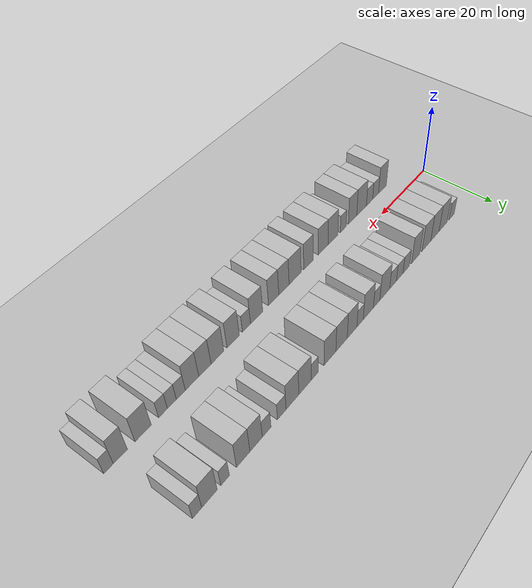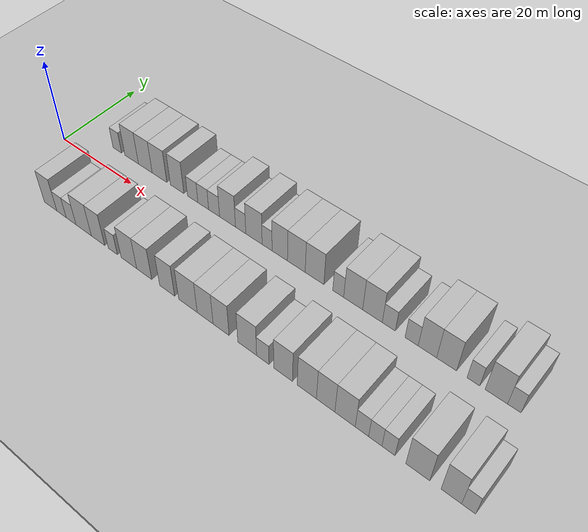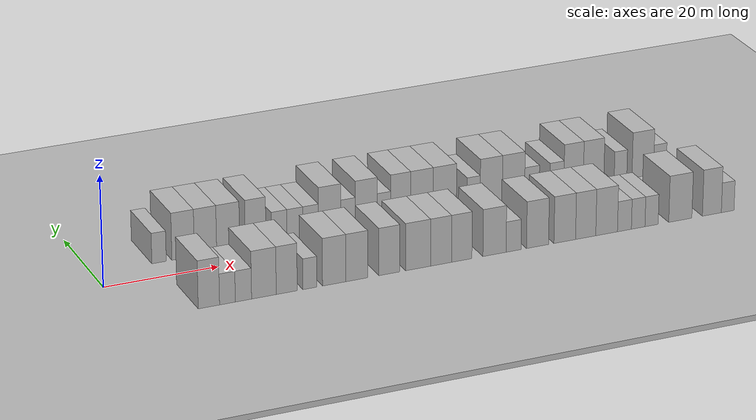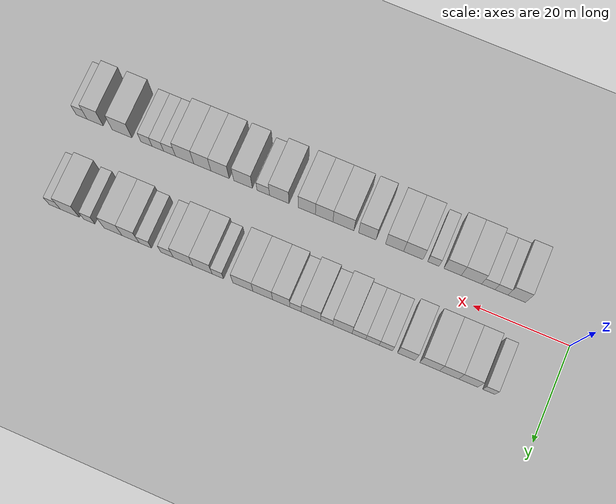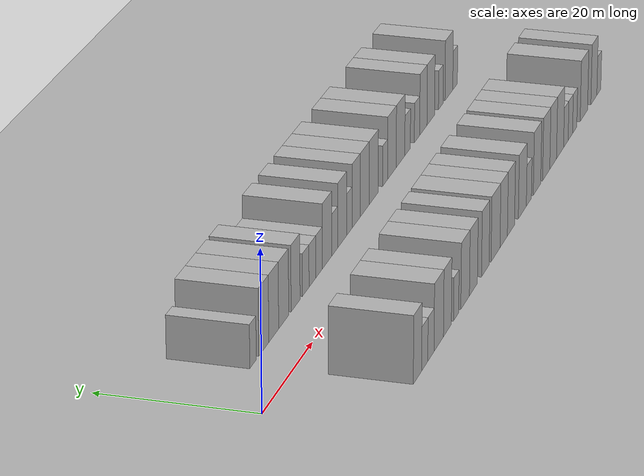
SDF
<sdf version="1.6">
 <world name="default">
  <include><name>ground_plane_1</name><uri>model://HANNAS_ground_plane</uri></include>
  <include>
   <name>ground_plane_2</name>
   <uri>model://HANNAS_ground_plane</uri>
   <pose>100 0 0  0 0 0</pose>
  </include>
  <model name="building_1">
   <static>1</static>
   <pose>11.2591 9.5000 0 0.000000 0.000000 1.570796</pose>
   <link name="link">
    <pose>0 0 3.00 0 0 0</pose>
    <collision name="collision"><geometry><box><size>10.0000 2.5181 6.0000</size></box></geometry></collision>
    <visual name="visual">
     <cast_shadows>0</cast_shadows>
     <geometry><box><size>10.0000 2.5181 6.0000</size></box></geometry>
     <material>
      <script>
       <uri>model://HANNAS_wall/materials/scripts</uri>
       <uri>model://HANNAS_wall/materials/textures</uri>
       <name>vrc/HANNAS_wall</name>
      </script>
     </material>
    </visual>
   </link>
  </model>
  <model name="building_2">
   <static>1</static>
   <pose>15.4952 9.5000 0 0.000000 0.000000 1.570796</pose>
   <link name="link">
    <pose>0 0 4.50 0 0 0</pose>
    <collision name="collision"><geometry><box><size>10.0000 3.9541 9.0000</size></box></geometry></collision>
    <visual name="visual">
     <cast_shadows>0</cast_shadows>
     <geometry><box><size>10.0000 3.9541 9.0000</size></box></geometry>
     <material>
      <script>
       <uri>model://HANNAS_wall/materials/scripts</uri>
       <uri>model://HANNAS_wall/materials/textures</uri>
       <name>vrc/HANNAS_wall</name>
      </script>
     </material>
    </visual>
   </link>
  </model>
  <model name="building_3">
   <static>1</static>
   <pose>19.4409 9.5000 0 0.000000 0.000000 1.570796</pose>
   <link name="link">
    <pose>0 0 4.50 0 0 0</pose>
    <collision name="collision"><geometry><box><size>10.0000 3.9372 9.0000</size></box></geometry></collision>
    <visual name="visual">
     <cast_shadows>0</cast_shadows>
     <geometry><box><size>10.0000 3.9372 9.0000</size></box></geometry>
     <material>
      <script>
       <uri>model://HANNAS_wall/materials/scripts</uri>
       <uri>model://HANNAS_wall/materials/textures</uri>
       <name>vrc/HANNAS_wall</name>
      </script>
     </material>
    </visual>
   </link>
  </model>
  <model name="building_4">
   <static>1</static>
   <pose>23.4566 9.5000 0 0.000000 0.000000 1.570796</pose>
   <link name="link">
    <pose>0 0 4.50 0 0 0</pose>
    <collision name="collision"><geometry><box><size>10.0000 4.0942 9.0000</size></box></geometry></collision>
    <visual name="visual">
     <cast_shadows>0</cast_shadows>
     <geometry><box><size>10.0000 4.0942 9.0000</size></box></geometry>
     <material>
      <script>
       <uri>model://HANNAS_wall/materials/scripts</uri>
       <uri>model://HANNAS_wall/materials/textures</uri>
       <name>vrc/HANNAS_wall</name>
      </script>
     </material>
    </visual>
   </link>
  </model>
  <model name="building_5">
   <static>1</static>
   <pose>28.3502 9.5000 0 0.000000 0.000000 1.570796</pose>
   <link name="link">
    <pose>0 0 4.50 0 0 0</pose>
    <collision name="collision"><geometry><box><size>10.0000 3.6929 9.0000</size></box></geometry></collision>
    <visual name="visual">
     <cast_shadows>0</cast_shadows>
     <geometry><box><size>10.0000 3.6929 9.0000</size></box></geometry>
     <material>
      <script>
       <uri>model://HANNAS_wall/materials/scripts</uri>
       <uri>model://HANNAS_wall/materials/textures</uri>
       <name>vrc/HANNAS_wall</name>
      </script>
     </material>
    </visual>
   </link>
  </model>
  <model name="building_6">
   <static>1</static>
   <pose>32.5860 9.5000 0 0.000000 0.000000 1.570796</pose>
   <link name="link">
    <pose>0 0 3.00 0 0 0</pose>
    <collision name="collision"><geometry><box><size>10.0000 2.7786 6.0000</size></box></geometry></collision>
    <visual name="visual">
     <cast_shadows>0</cast_shadows>
     <geometry><box><size>10.0000 2.7786 6.0000</size></box></geometry>
     <material>
      <script>
       <uri>model://HANNAS_wall/materials/scripts</uri>
       <uri>model://HANNAS_wall/materials/textures</uri>
       <name>vrc/HANNAS_wall</name>
      </script>
     </material>
    </visual>
   </link>
  </model>
  <model name="building_7">
   <static>1</static>
   <pose>35.3930 9.5000 0 0.000000 0.000000 1.570796</pose>
   <link name="link">
    <pose>0 0 3.00 0 0 0</pose>
    <collision name="collision"><geometry><box><size>10.0000 2.8354 6.0000</size></box></geometry></collision>
    <visual name="visual">
     <cast_shadows>0</cast_shadows>
     <geometry><box><size>10.0000 2.8354 6.0000</size></box></geometry>
     <material>
      <script>
       <uri>model://HANNAS_wall/materials/scripts</uri>
       <uri>model://HANNAS_wall/materials/textures</uri>
       <name>vrc/HANNAS_wall</name>
      </script>
     </material>
    </visual>
   </link>
  </model>
  <model name="building_8">
   <static>1</static>
   <pose>38.2418 9.5000 0 0.000000 0.000000 1.570796</pose>
   <link name="link">
    <pose>0 0 3.00 0 0 0</pose>
    <collision name="collision"><geometry><box><size>10.0000 2.8623 6.0000</size></box></geometry></collision>
    <visual name="visual">
     <cast_shadows>0</cast_shadows>
     <geometry><box><size>10.0000 2.8623 6.0000</size></box></geometry>
     <material>
      <script>
       <uri>model://HANNAS_wall/materials/scripts</uri>
       <uri>model://HANNAS_wall/materials/textures</uri>
       <name>vrc/HANNAS_wall</name>
      </script>
     </material>
    </visual>
   </link>
  </model>
  <model name="building_9">
   <static>1</static>
   <pose>41.7074 9.5000 0 0.000000 0.000000 1.570796</pose>
   <link name="link">
    <pose>0 0 4.50 0 0 0</pose>
    <collision name="collision"><geometry><box><size>10.0000 4.0688 9.0000</size></box></geometry></collision>
    <visual name="visual">
     <cast_shadows>0</cast_shadows>
     <geometry><box><size>10.0000 4.0688 9.0000</size></box></geometry>
     <material>
      <script>
       <uri>model://HANNAS_wall/materials/scripts</uri>
       <uri>model://HANNAS_wall/materials/textures</uri>
       <name>vrc/HANNAS_wall</name>
      </script>
     </material>
    </visual>
   </link>
  </model>
  <model name="building_10">
   <static>1</static>
   <pose>45.0403 9.5000 0 0.000000 0.000000 1.570796</pose>
   <link name="link">
    <pose>0 0 3.00 0 0 0</pose>
    <collision name="collision"><geometry><box><size>10.0000 2.5971 6.0000</size></box></geometry></collision>
    <visual name="visual">
     <cast_shadows>0</cast_shadows>
     <geometry><box><size>10.0000 2.5971 6.0000</size></box></geometry>
     <material>
      <script>
       <uri>model://HANNAS_wall/materials/scripts</uri>
       <uri>model://HANNAS_wall/materials/textures</uri>
       <name>vrc/HANNAS_wall</name>
      </script>
     </material>
    </visual>
   </link>
  </model>
  <model name="building_11">
   <static>1</static>
   <pose>48.3593 9.5000 0 0.000000 0.000000 1.570796</pose>
   <link name="link">
    <pose>0 0 4.50 0 0 0</pose>
    <collision name="collision"><geometry><box><size>10.0000 4.0409 9.0000</size></box></geometry></collision>
    <visual name="visual">
     <cast_shadows>0</cast_shadows>
     <geometry><box><size>10.0000 4.0409 9.0000</size></box></geometry>
     <material>
      <script>
       <uri>model://HANNAS_wall/materials/scripts</uri>
       <uri>model://HANNAS_wall/materials/textures</uri>
       <name>vrc/HANNAS_wall</name>
      </script>
     </material>
    </visual>
   </link>
  </model>
  <model name="building_12">
   <static>1</static>
   <pose>51.5894 9.5000 0 0.000000 0.000000 1.570796</pose>
   <link name="link">
    <pose>0 0 3.00 0 0 0</pose>
    <collision name="collision"><geometry><box><size>10.0000 2.4194 6.0000</size></box></geometry></collision>
    <visual name="visual">
     <cast_shadows>0</cast_shadows>
     <geometry><box><size>10.0000 2.4194 6.0000</size></box></geometry>
     <material>
      <script>
       <uri>model://HANNAS_wall/materials/scripts</uri>
       <uri>model://HANNAS_wall/materials/textures</uri>
       <name>vrc/HANNAS_wall</name>
      </script>
     </material>
    </visual>
   </link>
  </model>
  <model name="building_13">
   <static>1</static>
   <pose>54.6429 9.5000 0 0.000000 0.000000 1.570796</pose>
   <link name="link">
    <pose>0 0 4.50 0 0 0</pose>
    <collision name="collision"><geometry><box><size>10.0000 3.6875 9.0000</size></box></geometry></collision>
    <visual name="visual">
     <cast_shadows>0</cast_shadows>
     <geometry><box><size>10.0000 3.6875 9.0000</size></box></geometry>
     <material>
      <script>
       <uri>model://HANNAS_wall/materials/scripts</uri>
       <uri>model://HANNAS_wall/materials/textures</uri>
       <name>vrc/HANNAS_wall</name>
      </script>
     </material>
    </visual>
   </link>
  </model>
  <model name="building_14">
   <static>1</static>
   <pose>58.5699 9.5000 0 0.000000 0.000000 1.570796</pose>
   <link name="link">
    <pose>0 0 4.50 0 0 0</pose>
    <collision name="collision"><geometry><box><size>10.0000 4.1665 9.0000</size></box></geometry></collision>
    <visual name="visual">
     <cast_shadows>0</cast_shadows>
     <geometry><box><size>10.0000 4.1665 9.0000</size></box></geometry>
     <material>
      <script>
       <uri>model://HANNAS_wall/materials/scripts</uri>
       <uri>model://HANNAS_wall/materials/textures</uri>
       <name>vrc/HANNAS_wall</name>
      </script>
     </material>
    </visual>
   </link>
  </model>
  <model name="building_15">
   <static>1</static>
   <pose>62.7989 9.5000 0 0.000000 0.000000 1.570796</pose>
   <link name="link">
    <pose>0 0 4.50 0 0 0</pose>
    <collision name="collision"><geometry><box><size>10.0000 4.2914 9.0000</size></box></geometry></collision>
    <visual name="visual">
     <cast_shadows>0</cast_shadows>
     <geometry><box><size>10.0000 4.2914 9.0000</size></box></geometry>
     <material>
      <script>
       <uri>model://HANNAS_wall/materials/scripts</uri>
       <uri>model://HANNAS_wall/materials/textures</uri>
       <name>vrc/HANNAS_wall</name>
      </script>
     </material>
    </visual>
   </link>
  </model>
  <model name="building_16">
   <static>1</static>
   <pose>68.1604 9.5000 0 0.000000 0.000000 1.570796</pose>
   <link name="link">
    <pose>0 0 3.00 0 0 0</pose>
    <collision name="collision"><geometry><box><size>10.0000 2.4318 6.0000</size></box></geometry></collision>
    <visual name="visual">
     <cast_shadows>0</cast_shadows>
     <geometry><box><size>10.0000 2.4318 6.0000</size></box></geometry>
     <material>
      <script>
       <uri>model://HANNAS_wall/materials/scripts</uri>
       <uri>model://HANNAS_wall/materials/textures</uri>
       <name>vrc/HANNAS_wall</name>
      </script>
     </material>
    </visual>
   </link>
  </model>
  <model name="building_17">
   <static>1</static>
   <pose>71.4550 9.5000 0 0.000000 0.000000 1.570796</pose>
   <link name="link">
    <pose>0 0 4.50 0 0 0</pose>
    <collision name="collision"><geometry><box><size>10.0000 4.1574 9.0000</size></box></geometry></collision>
    <visual name="visual">
     <cast_shadows>0</cast_shadows>
     <geometry><box><size>10.0000 4.1574 9.0000</size></box></geometry>
     <material>
      <script>
       <uri>model://HANNAS_wall/materials/scripts</uri>
       <uri>model://HANNAS_wall/materials/textures</uri>
       <name>vrc/HANNAS_wall</name>
      </script>
     </material>
    </visual>
   </link>
  </model>
  <model name="building_18">
   <static>1</static>
   <pose>75.6295 9.5000 0 0.000000 0.000000 1.570796</pose>
   <link name="link">
    <pose>0 0 4.50 0 0 0</pose>
    <collision name="collision"><geometry><box><size>10.0000 4.1917 9.0000</size></box></geometry></collision>
    <visual name="visual">
     <cast_shadows>0</cast_shadows>
     <geometry><box><size>10.0000 4.1917 9.0000</size></box></geometry>
     <material>
      <script>
       <uri>model://HANNAS_wall/materials/scripts</uri>
       <uri>model://HANNAS_wall/materials/textures</uri>
       <name>vrc/HANNAS_wall</name>
      </script>
     </material>
    </visual>
   </link>
  </model>
  <model name="building_19">
   <static>1</static>
   <pose>79.0983 9.5000 0 0.000000 0.000000 1.570796</pose>
   <link name="link">
    <pose>0 0 3.00 0 0 0</pose>
    <collision name="collision"><geometry><box><size>10.0000 2.7459 6.0000</size></box></geometry></collision>
    <visual name="visual">
     <cast_shadows>0</cast_shadows>
     <geometry><box><size>10.0000 2.7459 6.0000</size></box></geometry>
     <material>
      <script>
       <uri>model://HANNAS_wall/materials/scripts</uri>
       <uri>model://HANNAS_wall/materials/textures</uri>
       <name>vrc/HANNAS_wall</name>
      </script>
     </material>
    </visual>
   </link>
  </model>
  <model name="building_20">
   <static>1</static>
   <pose>83.8172 9.5000 0 0.000000 0.000000 1.570796</pose>
   <link name="link">
    <pose>0 0 3.00 0 0 0</pose>
    <collision name="collision"><geometry><box><size>10.0000 2.6920 6.0000</size></box></geometry></collision>
    <visual name="visual">
     <cast_shadows>0</cast_shadows>
     <geometry><box><size>10.0000 2.6920 6.0000</size></box></geometry>
     <material>
      <script>
       <uri>model://HANNAS_wall/materials/scripts</uri>
       <uri>model://HANNAS_wall/materials/textures</uri>
       <name>vrc/HANNAS_wall</name>
      </script>
     </material>
    </visual>
   </link>
  </model>
  <model name="building_21">
   <static>1</static>
   <pose>87.0149 9.5000 0 0.000000 0.000000 1.570796</pose>
   <link name="link">
    <pose>0 0 4.50 0 0 0</pose>
    <collision name="collision"><geometry><box><size>10.0000 3.7034 9.0000</size></box></geometry></collision>
    <visual name="visual">
     <cast_shadows>0</cast_shadows>
     <geometry><box><size>10.0000 3.7034 9.0000</size></box></geometry>
     <material>
      <script>
       <uri>model://HANNAS_wall/materials/scripts</uri>
       <uri>model://HANNAS_wall/materials/textures</uri>
       <name>vrc/HANNAS_wall</name>
      </script>
     </material>
    </visual>
   </link>
  </model>
  <model name="building_22">
   <static>1</static>
   <pose>90.8317 9.5000 0 0.000000 0.000000 1.570796</pose>
   <link name="link">
    <pose>0 0 4.50 0 0 0</pose>
    <collision name="collision"><geometry><box><size>10.0000 3.9303 9.0000</size></box></geometry></collision>
    <visual name="visual">
     <cast_shadows>0</cast_shadows>
     <geometry><box><size>10.0000 3.9303 9.0000</size></box></geometry>
     <material>
      <script>
       <uri>model://HANNAS_wall/materials/scripts</uri>
       <uri>model://HANNAS_wall/materials/textures</uri>
       <name>vrc/HANNAS_wall</name>
      </script>
     </material>
    </visual>
   </link>
  </model>
  <model name="building_23">
   <static>1</static>
   <pose>96.0097 9.5000 0 0.000000 0.000000 1.570796</pose>
   <link name="link">
    <pose>0 0 3.00 0 0 0</pose>
    <collision name="collision"><geometry><box><size>10.0000 2.4257 6.0000</size></box></geometry></collision>
    <visual name="visual">
     <cast_shadows>0</cast_shadows>
     <geometry><box><size>10.0000 2.4257 6.0000</size></box></geometry>
     <material>
      <script>
       <uri>model://HANNAS_wall/materials/scripts</uri>
       <uri>model://HANNAS_wall/materials/textures</uri>
       <name>vrc/HANNAS_wall</name>
      </script>
     </material>
    </visual>
   </link>
  </model>
  <model name="building_24">
   <static>1</static>
   <pose>100.3066 9.5000 0 0.000000 0.000000 1.570796</pose>
   <link name="link">
    <pose>0 0 4.50 0 0 0</pose>
    <collision name="collision"><geometry><box><size>10.0000 4.1679 9.0000</size></box></geometry></collision>
    <visual name="visual">
     <cast_shadows>0</cast_shadows>
     <geometry><box><size>10.0000 4.1679 9.0000</size></box></geometry>
     <material>
      <script>
       <uri>model://HANNAS_wall/materials/scripts</uri>
       <uri>model://HANNAS_wall/materials/textures</uri>
       <name>vrc/HANNAS_wall</name>
      </script>
     </material>
    </visual>
   </link>
  </model>
  <model name="building_25">
   <static>1</static>
   <pose>103.6202 9.5000 0 0.000000 0.000000 1.570796</pose>
   <link name="link">
    <pose>0 0 3.00 0 0 0</pose>
    <collision name="collision"><geometry><box><size>10.0000 2.4592 6.0000</size></box></geometry></collision>
    <visual name="visual">
     <cast_shadows>0</cast_shadows>
     <geometry><box><size>10.0000 2.4592 6.0000</size></box></geometry>
     <material>
      <script>
       <uri>model://HANNAS_wall/materials/scripts</uri>
       <uri>model://HANNAS_wall/materials/textures</uri>
       <name>vrc/HANNAS_wall</name>
      </script>
     </material>
    </visual>
   </link>
  </model>
  <model name="building_51">
   <static>1</static>
   <pose>12.8317 -9.5000 0 0.000000 0.000000 1.570796</pose>
   <link name="link">
    <pose>0 0 4.50 0 0 0</pose>
    <collision name="collision"><geometry><box><size>10.0000 3.6635 9.0000</size></box></geometry></collision>
    <visual name="visual">
     <cast_shadows>0</cast_shadows>
     <geometry><box><size>10.0000 3.6635 9.0000</size></box></geometry>
     <material>
      <script>
       <uri>model://HANNAS_wall/materials/scripts</uri>
       <uri>model://HANNAS_wall/materials/textures</uri>
       <name>vrc/HANNAS_wall</name>
      </script>
     </material>
    </visual>
   </link>
  </model>
  <model name="building_52">
   <static>1</static>
   <pose>16.0244 -9.5000 0 0.000000 0.000000 1.570796</pose>
   <link name="link">
    <pose>0 0 3.00 0 0 0</pose>
    <collision name="collision"><geometry><box><size>10.0000 2.7217 6.0000</size></box></geometry></collision>
    <visual name="visual">
     <cast_shadows>0</cast_shadows>
     <geometry><box><size>10.0000 2.7217 6.0000</size></box></geometry>
     <material>
      <script>
       <uri>model://HANNAS_wall/materials/scripts</uri>
       <uri>model://HANNAS_wall/materials/textures</uri>
       <name>vrc/HANNAS_wall</name>
      </script>
     </material>
    </visual>
   </link>
  </model>
  <model name="building_53">
   <static>1</static>
   <pose>18.7912 -9.5000 0 0.000000 0.000000 1.570796</pose>
   <link name="link">
    <pose>0 0 3.00 0 0 0</pose>
    <collision name="collision"><geometry><box><size>10.0000 2.8119 6.0000</size></box></geometry></collision>
    <visual name="visual">
     <cast_shadows>0</cast_shadows>
     <geometry><box><size>10.0000 2.8119 6.0000</size></box></geometry>
     <material>
      <script>
       <uri>model://HANNAS_wall/materials/scripts</uri>
       <uri>model://HANNAS_wall/materials/textures</uri>
       <name>vrc/HANNAS_wall</name>
      </script>
     </material>
    </visual>
   </link>
  </model>
  <model name="building_54">
   <static>1</static>
   <pose>22.3428 -9.5000 0 0.000000 0.000000 1.570796</pose>
   <link name="link">
    <pose>0 0 4.50 0 0 0</pose>
    <collision name="collision"><geometry><box><size>10.0000 4.2914 9.0000</size></box></geometry></collision>
    <visual name="visual">
     <cast_shadows>0</cast_shadows>
     <geometry><box><size>10.0000 4.2914 9.0000</size></box></geometry>
     <material>
      <script>
       <uri>model://HANNAS_wall/materials/scripts</uri>
       <uri>model://HANNAS_wall/materials/textures</uri>
       <name>vrc/HANNAS_wall</name>
      </script>
     </material>
    </visual>
   </link>
  </model>
  <model name="building_55">
   <static>1</static>
   <pose>26.3181 -9.5000 0 0.000000 0.000000 1.570796</pose>
   <link name="link">
    <pose>0 0 4.50 0 0 0</pose>
    <collision name="collision"><geometry><box><size>10.0000 3.6592 9.0000</size></box></geometry></collision>
    <visual name="visual">
     <cast_shadows>0</cast_shadows>
     <geometry><box><size>10.0000 3.6592 9.0000</size></box></geometry>
     <material>
      <script>
       <uri>model://HANNAS_wall/materials/scripts</uri>
       <uri>model://HANNAS_wall/materials/textures</uri>
       <name>vrc/HANNAS_wall</name>
      </script>
     </material>
    </visual>
   </link>
  </model>
  <model name="building_56">
   <static>1</static>
   <pose>30.3644 -9.5000 0 0.000000 0.000000 1.570796</pose>
   <link name="link">
    <pose>0 0 3.00 0 0 0</pose>
    <collision name="collision"><geometry><box><size>10.0000 2.4335 6.0000</size></box></geometry></collision>
    <visual name="visual">
     <cast_shadows>0</cast_shadows>
     <geometry><box><size>10.0000 2.4335 6.0000</size></box></geometry>
     <material>
      <script>
       <uri>model://HANNAS_wall/materials/scripts</uri>
       <uri>model://HANNAS_wall/materials/textures</uri>
       <name>vrc/HANNAS_wall</name>
      </script>
     </material>
    </visual>
   </link>
  </model>
  <model name="building_57">
   <static>1</static>
   <pose>34.6308 -9.5000 0 0.000000 0.000000 1.570796</pose>
   <link name="link">
    <pose>0 0 4.50 0 0 0</pose>
    <collision name="collision"><geometry><box><size>10.0000 4.0994 9.0000</size></box></geometry></collision>
    <visual name="visual">
     <cast_shadows>0</cast_shadows>
     <geometry><box><size>10.0000 4.0994 9.0000</size></box></geometry>
     <material>
      <script>
       <uri>model://HANNAS_wall/materials/scripts</uri>
       <uri>model://HANNAS_wall/materials/textures</uri>
       <name>vrc/HANNAS_wall</name>
      </script>
     </material>
    </visual>
   </link>
  </model>
  <model name="building_58">
   <static>1</static>
   <pose>38.6171 -9.5000 0 0.000000 0.000000 1.570796</pose>
   <link name="link">
    <pose>0 0 4.50 0 0 0</pose>
    <collision name="collision"><geometry><box><size>10.0000 3.8731 9.0000</size></box></geometry></collision>
    <visual name="visual">
     <cast_shadows>0</cast_shadows>
     <geometry><box><size>10.0000 3.8731 9.0000</size></box></geometry>
     <material>
      <script>
       <uri>model://HANNAS_wall/materials/scripts</uri>
       <uri>model://HANNAS_wall/materials/textures</uri>
       <name>vrc/HANNAS_wall</name>
      </script>
     </material>
    </visual>
   </link>
  </model>
  <model name="building_59">
   <static>1</static>
   <pose>44.4219 -9.5000 0 0.000000 0.000000 1.570796</pose>
   <link name="link">
    <pose>0 0 4.50 0 0 0</pose>
    <collision name="collision"><geometry><box><size>10.0000 3.7365 9.0000</size></box></geometry></collision>
    <visual name="visual">
     <cast_shadows>0</cast_shadows>
     <geometry><box><size>10.0000 3.7365 9.0000</size></box></geometry>
     <material>
      <script>
       <uri>model://HANNAS_wall/materials/scripts</uri>
       <uri>model://HANNAS_wall/materials/textures</uri>
       <name>vrc/HANNAS_wall</name>
      </script>
     </material>
    </visual>
   </link>
  </model>
  <model name="building_60">
   <static>1</static>
   <pose>49.5352 -9.5000 0 0.000000 0.000000 1.570796</pose>
   <link name="link">
    <pose>0 0 4.50 0 0 0</pose>
    <collision name="collision"><geometry><box><size>10.0000 4.4901 9.0000</size></box></geometry></collision>
    <visual name="visual">
     <cast_shadows>0</cast_shadows>
     <geometry><box><size>10.0000 4.4901 9.0000</size></box></geometry>
     <material>
      <script>
       <uri>model://HANNAS_wall/materials/scripts</uri>
       <uri>model://HANNAS_wall/materials/textures</uri>
       <name>vrc/HANNAS_wall</name>
      </script>
     </material>
    </visual>
   </link>
  </model>
  <model name="building_61">
   <static>1</static>
   <pose>53.6674 -9.5000 0 0.000000 0.000000 1.570796</pose>
   <link name="link">
    <pose>0 0 4.50 0 0 0</pose>
    <collision name="collision"><geometry><box><size>10.0000 3.7744 9.0000</size></box></geometry></collision>
    <visual name="visual">
     <cast_shadows>0</cast_shadows>
     <geometry><box><size>10.0000 3.7744 9.0000</size></box></geometry>
     <material>
      <script>
       <uri>model://HANNAS_wall/materials/scripts</uri>
       <uri>model://HANNAS_wall/materials/textures</uri>
       <name>vrc/HANNAS_wall</name>
      </script>
     </material>
    </visual>
   </link>
  </model>
  <model name="building_62">
   <static>1</static>
   <pose>57.4030 -9.5000 0 0.000000 0.000000 1.570796</pose>
   <link name="link">
    <pose>0 0 4.50 0 0 0</pose>
    <collision name="collision"><geometry><box><size>10.0000 3.6969 9.0000</size></box></geometry></collision>
    <visual name="visual">
     <cast_shadows>0</cast_shadows>
     <geometry><box><size>10.0000 3.6969 9.0000</size></box></geometry>
     <material>
      <script>
       <uri>model://HANNAS_wall/materials/scripts</uri>
       <uri>model://HANNAS_wall/materials/textures</uri>
       <name>vrc/HANNAS_wall</name>
      </script>
     </material>
    </visual>
   </link>
  </model>
  <model name="building_63">
   <static>1</static>
   <pose>63.3575 -9.5000 0 0.000000 0.000000 1.570796</pose>
   <link name="link">
    <pose>0 0 4.50 0 0 0</pose>
    <collision name="collision"><geometry><box><size>10.0000 4.2121 9.0000</size></box></geometry></collision>
    <visual name="visual">
     <cast_shadows>0</cast_shadows>
     <geometry><box><size>10.0000 4.2121 9.0000</size></box></geometry>
     <material>
      <script>
       <uri>model://HANNAS_wall/materials/scripts</uri>
       <uri>model://HANNAS_wall/materials/textures</uri>
       <name>vrc/HANNAS_wall</name>
      </script>
     </material>
    </visual>
   </link>
  </model>
  <model name="building_64">
   <static>1</static>
   <pose>66.8310 -9.5000 0 0.000000 0.000000 1.570796</pose>
   <link name="link">
    <pose>0 0 3.00 0 0 0</pose>
    <collision name="collision"><geometry><box><size>10.0000 2.7348 6.0000</size></box></geometry></collision>
    <visual name="visual">
     <cast_shadows>0</cast_shadows>
     <geometry><box><size>10.0000 2.7348 6.0000</size></box></geometry>
     <material>
      <script>
       <uri>model://HANNAS_wall/materials/scripts</uri>
       <uri>model://HANNAS_wall/materials/textures</uri>
       <name>vrc/HANNAS_wall</name>
      </script>
     </material>
    </visual>
   </link>
  </model>
  <model name="building_65">
   <static>1</static>
   <pose>71.2220 -9.5000 0 0.000000 0.000000 1.570796</pose>
   <link name="link">
    <pose>0 0 4.50 0 0 0</pose>
    <collision name="collision"><geometry><box><size>10.0000 4.0472 9.0000</size></box></geometry></collision>
    <visual name="visual">
     <cast_shadows>0</cast_shadows>
     <geometry><box><size>10.0000 4.0472 9.0000</size></box></geometry>
     <material>
      <script>
       <uri>model://HANNAS_wall/materials/scripts</uri>
       <uri>model://HANNAS_wall/materials/textures</uri>
       <name>vrc/HANNAS_wall</name>
      </script>
     </material>
    </visual>
   </link>
  </model>
  <model name="building_66">
   <static>1</static>
   <pose>76.2419 -9.5000 0 0.000000 0.000000 1.570796</pose>
   <link name="link">
    <pose>0 0 4.50 0 0 0</pose>
    <collision name="collision"><geometry><box><size>10.0000 3.9924 9.0000</size></box></geometry></collision>
    <visual name="visual">
     <cast_shadows>0</cast_shadows>
     <geometry><box><size>10.0000 3.9924 9.0000</size></box></geometry>
     <material>
      <script>
       <uri>model://HANNAS_wall/materials/scripts</uri>
       <uri>model://HANNAS_wall/materials/textures</uri>
       <name>vrc/HANNAS_wall</name>
      </script>
     </material>
    </visual>
   </link>
  </model>
  <model name="building_67">
   <static>1</static>
   <pose>80.1162 -9.5000 0 0.000000 0.000000 1.570796</pose>
   <link name="link">
    <pose>0 0 4.50 0 0 0</pose>
    <collision name="collision"><geometry><box><size>10.0000 3.7562 9.0000</size></box></geometry></collision>
    <visual name="visual">
     <cast_shadows>0</cast_shadows>
     <geometry><box><size>10.0000 3.7562 9.0000</size></box></geometry>
     <material>
      <script>
       <uri>model://HANNAS_wall/materials/scripts</uri>
       <uri>model://HANNAS_wall/materials/textures</uri>
       <name>vrc/HANNAS_wall</name>
      </script>
     </material>
    </visual>
   </link>
  </model>
  <model name="building_68">
   <static>1</static>
   <pose>84.0139 -9.5000 0 0.000000 0.000000 1.570796</pose>
   <link name="link">
    <pose>0 0 4.50 0 0 0</pose>
    <collision name="collision"><geometry><box><size>10.0000 4.0393 9.0000</size></box></geometry></collision>
    <visual name="visual">
     <cast_shadows>0</cast_shadows>
     <geometry><box><size>10.0000 4.0393 9.0000</size></box></geometry>
     <material>
      <script>
       <uri>model://HANNAS_wall/materials/scripts</uri>
       <uri>model://HANNAS_wall/materials/textures</uri>
       <name>vrc/HANNAS_wall</name>
      </script>
     </material>
    </visual>
   </link>
  </model>
  <model name="building_69">
   <static>1</static>
   <pose>87.3392 -9.5000 0 0.000000 0.000000 1.570796</pose>
   <link name="link">
    <pose>0 0 3.00 0 0 0</pose>
    <collision name="collision"><geometry><box><size>10.0000 2.6112 6.0000</size></box></geometry></collision>
    <visual name="visual">
     <cast_shadows>0</cast_shadows>
     <geometry><box><size>10.0000 2.6112 6.0000</size></box></geometry>
     <material>
      <script>
       <uri>model://HANNAS_wall/materials/scripts</uri>
       <uri>model://HANNAS_wall/materials/textures</uri>
       <name>vrc/HANNAS_wall</name>
      </script>
     </material>
    </visual>
   </link>
  </model>
  <model name="building_70">
   <static>1</static>
   <pose>89.9166 -9.5000 0 0.000000 0.000000 1.570796</pose>
   <link name="link">
    <pose>0 0 3.00 0 0 0</pose>
    <collision name="collision"><geometry><box><size>10.0000 2.5437 6.0000</size></box></geometry></collision>
    <visual name="visual">
     <cast_shadows>0</cast_shadows>
     <geometry><box><size>10.0000 2.5437 6.0000</size></box></geometry>
     <material>
      <script>
       <uri>model://HANNAS_wall/materials/scripts</uri>
       <uri>model://HANNAS_wall/materials/textures</uri>
       <name>vrc/HANNAS_wall</name>
      </script>
     </material>
    </visual>
   </link>
  </model>
  <model name="building_71">
   <static>1</static>
   <pose>92.4292 -9.5000 0 0.000000 0.000000 1.570796</pose>
   <link name="link">
    <pose>0 0 3.00 0 0 0</pose>
    <collision name="collision"><geometry><box><size>10.0000 2.4815 6.0000</size></box></geometry></collision>
    <visual name="visual">
     <cast_shadows>0</cast_shadows>
     <geometry><box><size>10.0000 2.4815 6.0000</size></box></geometry>
     <material>
      <script>
       <uri>model://HANNAS_wall/materials/scripts</uri>
       <uri>model://HANNAS_wall/materials/textures</uri>
       <name>vrc/HANNAS_wall</name>
      </script>
     </material>
    </visual>
   </link>
  </model>
  <model name="building_72">
   <static>1</static>
   <pose>97.8570 -9.5000 0 0.000000 0.000000 1.570796</pose>
   <link name="link">
    <pose>0 0 4.50 0 0 0</pose>
    <collision name="collision"><geometry><box><size>10.0000 4.3741 9.0000</size></box></geometry></collision>
    <visual name="visual">
     <cast_shadows>0</cast_shadows>
     <geometry><box><size>10.0000 4.3741 9.0000</size></box></geometry>
     <material>
      <script>
       <uri>model://HANNAS_wall/materials/scripts</uri>
       <uri>model://HANNAS_wall/materials/textures</uri>
       <name>vrc/HANNAS_wall</name>
      </script>
     </material>
    </visual>
   </link>
  </model>
  <model name="building_73">
   <static>1</static>
   <pose>103.8518 -9.5000 0 0.000000 0.000000 1.570796</pose>
   <link name="link">
    <pose>0 0 4.50 0 0 0</pose>
    <collision name="collision"><geometry><box><size>10.0000 3.6155 9.0000</size></box></geometry></collision>
    <visual name="visual">
     <cast_shadows>0</cast_shadows>
     <geometry><box><size>10.0000 3.6155 9.0000</size></box></geometry>
     <material>
      <script>
       <uri>model://HANNAS_wall/materials/scripts</uri>
       <uri>model://HANNAS_wall/materials/textures</uri>
       <name>vrc/HANNAS_wall</name>
      </script>
     </material>
    </visual>
   </link>
  </model>
  <model name="building_74">
   <static>1</static>
   <pose>106.8710 -9.5000 0 0.000000 0.000000 1.570796</pose>
   <link name="link">
    <pose>0 0 3.00 0 0 0</pose>
    <collision name="collision"><geometry><box><size>10.0000 2.4230 6.0000</size></box></geometry></collision>
    <visual name="visual">
     <cast_shadows>0</cast_shadows>
     <geometry><box><size>10.0000 2.4230 6.0000</size></box></geometry>
     <material>
      <script>
       <uri>model://HANNAS_wall/materials/scripts</uri>
       <uri>model://HANNAS_wall/materials/textures</uri>
       <name>vrc/HANNAS_wall</name>
      </script>
     </material>
    </visual>
   </link>
  </model>
 </world>
</sdf>
